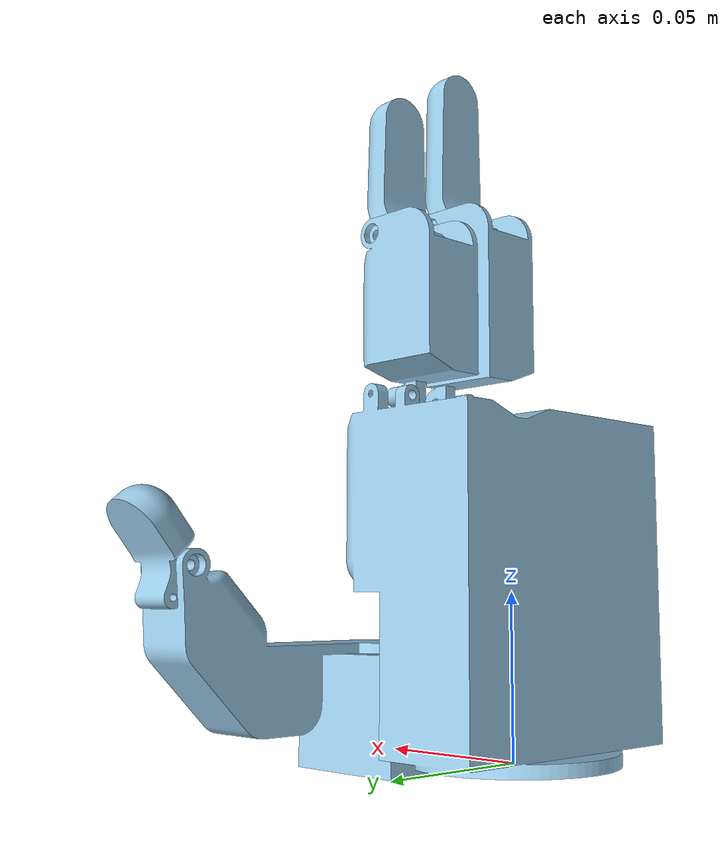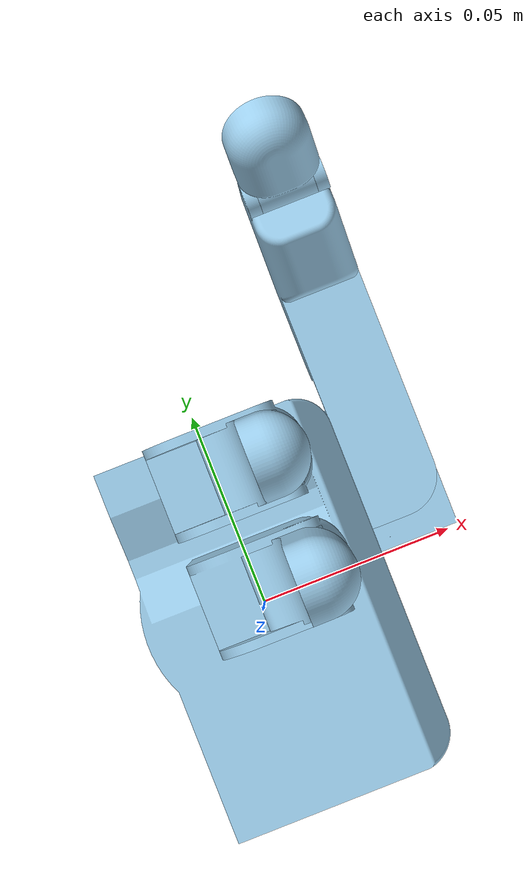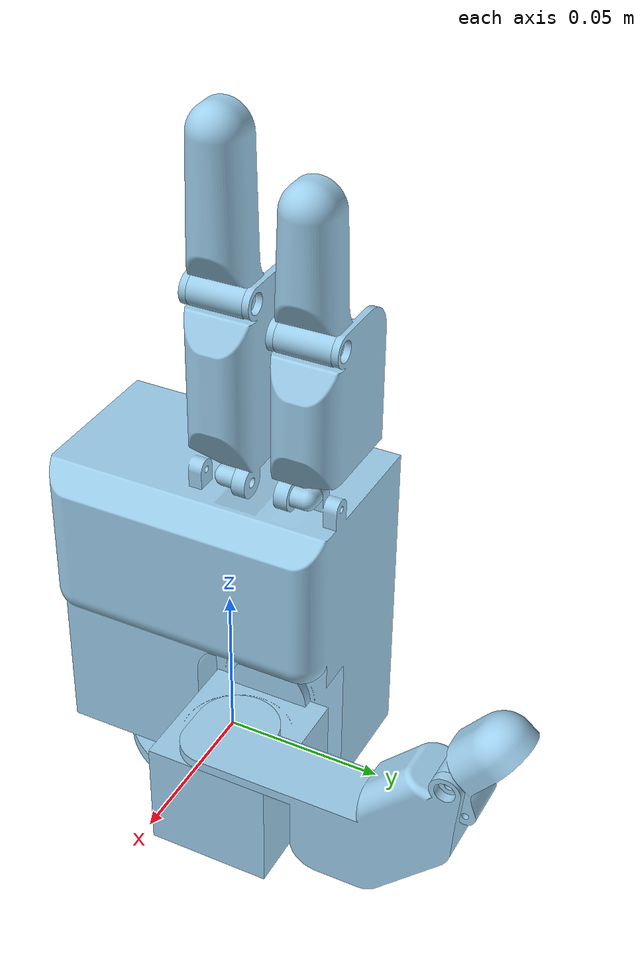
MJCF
<mujoco model="onshape">
  <compiler angle="radian"/>

  <asset>
    <mesh name="base_link" file="base_link.stl"/>
    <mesh name="link_0_0" file="link_0_0.stl"/>
    <mesh name="link_0_1" file="link_0_1.stl"/>
    <mesh name="link_0_2" file="link_0_2.stl"/>
    <mesh name="link_1_0" file="link_1_0.stl"/>
    <mesh name="link_1_1" file="link_1_1.stl"/>
    <mesh name="link_1_2" file="link_1_2.stl"/>
    <mesh name="link_2_0" file="link_2_0.stl"/>
    <mesh name="link_2_1" file="link_2_1.stl"/>
    <mesh name="link_2_2" file="link_2_2.stl"/>
  </asset>

  <worldbody>
    <geom pos="0.0225 0 0.004" quat="0.707107 0 0 0.707107" type="mesh" rgba="0.615686 0.811765 0.929412 1" mesh="base_link"/>

    <!-- Link 0 -->
    <body name="link_0_0" pos="0.0115 0.0205 0.032" quat="0.707107 0 0.707107 0">
      <joint name="base_l00" pos="0 0 0" axis="0 0 1" range="0 1.48353" damping="5"/>
      <geom quat="0.5 -0.5 -0.5 -0.5" type="mesh" rgba="0.615686 0.811765 0.929412 1" mesh="link_0_0"/>

      <body name="link_0_1" pos="0 0 0.0215" quat="0 -0.707107 0 -0.707107">
        <joint name="l00_l01" pos="0 0 0" axis="0 0 1" range="0 1.0472" damping="5"/>
        <geom quat="0 -1 0 0" type="mesh" rgba="0.615686 0.811765 0.929412 1" mesh="link_0_1"/>

        <body name="link_0_2" pos="0.0155 -0.0711023 -0.0251023" quat="0.299418 -0.640585 0.299418 -0.640585">
          <joint name="l01_l02" pos="0 0 0" axis="0 0 1" range="0 0.785398" damping="100"/>
          <geom pos="0 -0.0045 -0.007" quat="0.5 -0.5 -0.5 -0.5" type="mesh" rgba="0.615686 0.811765 0.929412 1" mesh="link_0_2"/>
        </body>
      </body>
    </body>

    <!-- Link 1 -->
    <body name="link_1_0" pos="0.0125 0.0335 0.107" quat="0.5 0.5 -0.5 -0.5">
      <joint name="base_l10" pos="0 0 0" axis="0 0 1" range="-0.349066 0.349066" damping="20"/>
      <geom quat="0.707107 0.707107 0 0" type="mesh" rgba="0.615686 0.811765 0.929412 1" mesh="link_1_0"/>

      <body name="link_1_1" pos="0.0041 0 -0.003" quat="0.707107 0 -0.707107 0">
        <joint name="l10_l11" pos="0 0 0" axis="0 0 1" range="0 1.5708" damping="5"/>
        <geom pos="0 0 0.0082" quat="0.5 -0.5 -0.5 -0.5" type="mesh" rgba="0.615686 0.811765 0.929412 1" mesh="link_1_1"/>

        <body name="link_1_2" pos="0 0.048 0.0122" quat="1 0 0 0">
          <joint name="l11_l12" pos="0 0 0" axis="0 0 1" range="0 1.8326" damping="150"/>
          <geom pos="0 -0.0045 -0.0081" quat="0.5 -0.5 -0.5 -0.5" type="mesh" rgba="0.615686 0.811765 0.929412 1" mesh="link_1_2"/>
        </body>
      </body>
    </body>

    <!-- Link 2 -->
    <body name="link_2_0" pos="0.0125 0.0085 0.107" quat="0.5 -0.5 0.5 -0.5">
      <joint name="base_l20" pos="0 0 0" axis="0 0 1" range="-0.349066 0.349066" damping="20"/>
      <geom quat="0.707107 -0.707107 0 0" type="mesh" rgba="0.615686 0.811765 0.929412 1" mesh="link_2_0"/>

      <body name="link_2_1" pos="-0.0041 0 0.003" quat="0 -0.707107 0 0.707107">
        <joint name="l20_l21" pos="0 0 0" axis="0 0 1" range="0 1.5708" damping="5"/>
        <geom quat="0.5 -0.5 -0.5 -0.5" type="mesh" rgba="0.615686 0.811765 0.929412 1" mesh="link_2_1"/>

        <body name="link_2_2" pos="0 0.055 0.004" quat="1 0 0 0">
          <joint name="l21_l22" pos="0 0 0" axis="0 0 1" range="0 1.8326" damping="150"/>
          <geom pos="0 -0.0045 -0.0081" quat="0.5 -0.5 -0.5 -0.5" type="mesh" rgba="0.615686 0.811765 0.929412 1" mesh="link_2_2"/>
        </body>
      </body>
    </body>

  </worldbody>

  <!-- Actuator Section: Adding position actuators for each joint -->
  <actuator>
    <!-- Actuators for link_0 -->
    <position joint="base_l00" ctrlrange="0 1.48353" kp="40"/>
    <position joint="l00_l01" ctrlrange="0 1.0472" kp="40"/>
    <position joint="l01_l02" ctrlrange="0 0.785398" kp="200"/>

    <!-- Actuators for link_1 -->
    <position joint="base_l10" ctrlrange="-0.349066 0.349066" kp="500"/>
    <position joint="l10_l11" ctrlrange="0 1.5708" kp="40"/>
    <position joint="l11_l12" ctrlrange="0 1.8326" kp="200"/>

    <!-- Actuators for link_2 -->
    <position joint="base_l20" ctrlrange="-0.349066 0.349066" kp="500"/>
    <position joint="l20_l21" ctrlrange="0 1.5708" kp="40"/>
    <position joint="l21_l22" ctrlrange="0 1.8326" kp="200"/>
  </actuator>
</mujoco>
